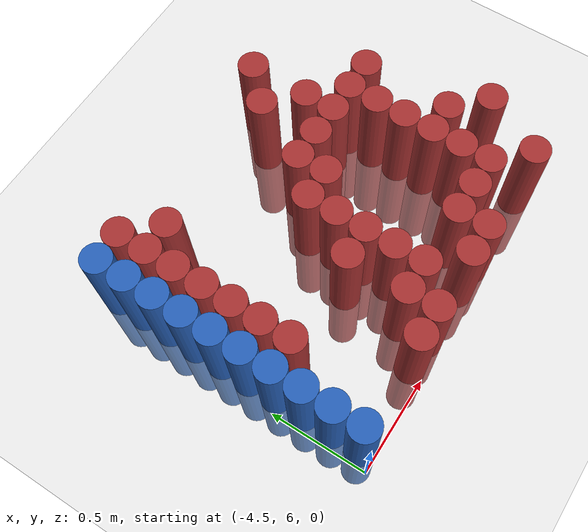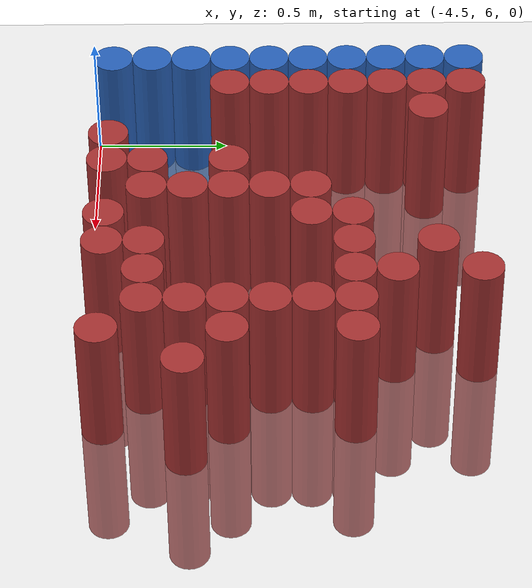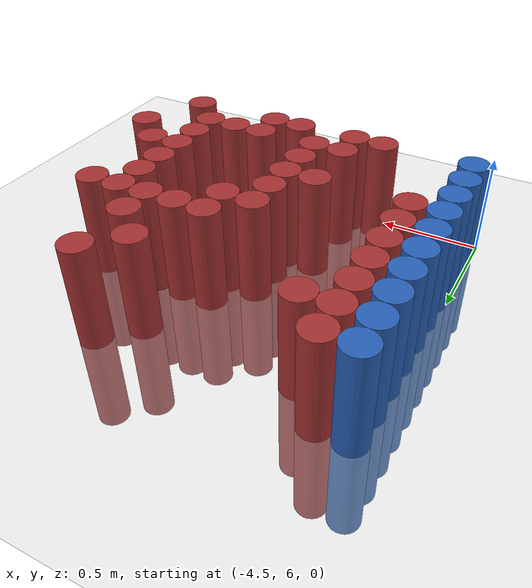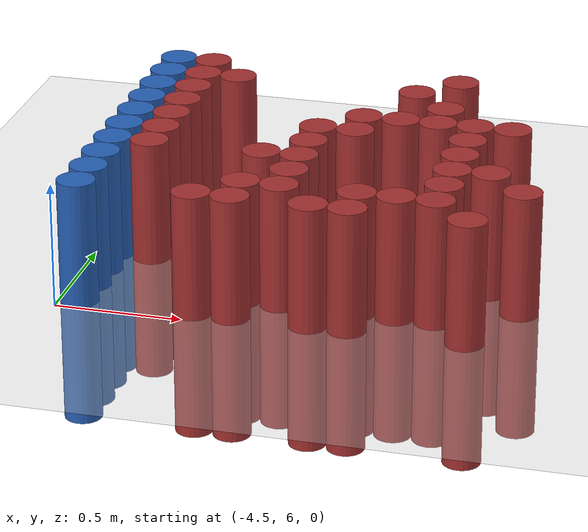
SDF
<sdf version="1.6">
 <world name="default">
  <model name="ground_plane">
   <static>1</static>
   <link name="link">
    <collision name="collision">
     <geometry><plane><normal>0 0 1</normal><size>100 100</size></plane></geometry>
     <surface><friction><ode><mu>100</mu><mu2>50</mu2></ode></friction></surface>
    </collision>
    <visual name="visual">
     <cast_shadows>0</cast_shadows>
     <geometry><plane><normal>0 0 1</normal><size>100 100</size></plane></geometry>
     <material>
      <script><uri>file://media/materials/scripts/gazebo.material</uri><name>Gazebo/Grey</name></script>
     </material>
    </visual>
   </link>
  </model>
  <model name="unit_cylinder_102">
   <static>1</static>
   <pose>-4.425000 6.075000 0.000000 0.000000 0.000000 0.000000</pose>
   <link name="link">
    <inertial>
     <mass>1</mass>
     <inertia><ixx>0.145833</ixx><ixy>0</ixy><ixz>0</ixz><iyy>0.145833</iyy><iyz>0</iyz><izz>0.125</izz></inertia>
    </inertial>
    <collision name="collision">
     <geometry><cylinder><radius>0.075000</radius><length>1</length></cylinder></geometry>
    </collision>
    <visual name="visual">
     <geometry><cylinder><radius>0.075000</radius><length>1</length></cylinder></geometry>
     <material>
      <ambient>0.152000 0.379000 0.720000 1</ambient>
      <diffuse>0.152000 0.379000 0.720000 1</diffuse>
     </material>
     <material>
      <script><name>Gazebo/Grey</name><uri>file://media/materials/scripts/gazebo.material</uri></script>
     </material>
    </visual>
   </link>
  </model>
  <model name="unit_cylinder_103">
   <static>1</static>
   <pose>-4.425000 6.225000 0.000000 0.000000 0.000000 0.000000</pose>
   <link name="link">
    <inertial>
     <mass>1</mass>
     <inertia><ixx>0.145833</ixx><ixy>0</ixy><ixz>0</ixz><iyy>0.145833</iyy><iyz>0</iyz><izz>0.125</izz></inertia>
    </inertial>
    <collision name="collision">
     <geometry><cylinder><radius>0.075000</radius><length>1</length></cylinder></geometry>
    </collision>
    <visual name="visual">
     <geometry><cylinder><radius>0.075000</radius><length>1</length></cylinder></geometry>
     <material>
      <ambient>0.152000 0.379000 0.720000 1</ambient>
      <diffuse>0.152000 0.379000 0.720000 1</diffuse>
     </material>
     <material>
      <script><name>Gazebo/Grey</name><uri>file://media/materials/scripts/gazebo.material</uri></script>
     </material>
    </visual>
   </link>
  </model>
  <model name="unit_cylinder_104">
   <static>1</static>
   <pose>-4.425000 6.375000 0.000000 0.000000 0.000000 0.000000</pose>
   <link name="link">
    <inertial>
     <mass>1</mass>
     <inertia><ixx>0.145833</ixx><ixy>0</ixy><ixz>0</ixz><iyy>0.145833</iyy><iyz>0</iyz><izz>0.125</izz></inertia>
    </inertial>
    <collision name="collision">
     <geometry><cylinder><radius>0.075000</radius><length>1</length></cylinder></geometry>
    </collision>
    <visual name="visual">
     <geometry><cylinder><radius>0.075000</radius><length>1</length></cylinder></geometry>
     <material>
      <ambient>0.152000 0.379000 0.720000 1</ambient>
      <diffuse>0.152000 0.379000 0.720000 1</diffuse>
     </material>
     <material>
      <script><name>Gazebo/Grey</name><uri>file://media/materials/scripts/gazebo.material</uri></script>
     </material>
    </visual>
   </link>
  </model>
  <model name="unit_cylinder_105">
   <static>1</static>
   <pose>-4.425000 6.525000 0.000000 0.000000 0.000000 0.000000</pose>
   <link name="link">
    <inertial>
     <mass>1</mass>
     <inertia><ixx>0.145833</ixx><ixy>0</ixy><ixz>0</ixz><iyy>0.145833</iyy><iyz>0</iyz><izz>0.125</izz></inertia>
    </inertial>
    <collision name="collision">
     <geometry><cylinder><radius>0.075000</radius><length>1</length></cylinder></geometry>
    </collision>
    <visual name="visual">
     <geometry><cylinder><radius>0.075000</radius><length>1</length></cylinder></geometry>
     <material>
      <ambient>0.152000 0.379000 0.720000 1</ambient>
      <diffuse>0.152000 0.379000 0.720000 1</diffuse>
     </material>
     <material>
      <script><name>Gazebo/Grey</name><uri>file://media/materials/scripts/gazebo.material</uri></script>
     </material>
    </visual>
   </link>
  </model>
  <model name="unit_cylinder_106">
   <static>1</static>
   <pose>-4.425000 6.675000 0.000000 0.000000 0.000000 0.000000</pose>
   <link name="link">
    <inertial>
     <mass>1</mass>
     <inertia><ixx>0.145833</ixx><ixy>0</ixy><ixz>0</ixz><iyy>0.145833</iyy><iyz>0</iyz><izz>0.125</izz></inertia>
    </inertial>
    <collision name="collision">
     <geometry><cylinder><radius>0.075000</radius><length>1</length></cylinder></geometry>
    </collision>
    <visual name="visual">
     <geometry><cylinder><radius>0.075000</radius><length>1</length></cylinder></geometry>
     <material>
      <ambient>0.152000 0.379000 0.720000 1</ambient>
      <diffuse>0.152000 0.379000 0.720000 1</diffuse>
     </material>
     <material>
      <script><name>Gazebo/Grey</name><uri>file://media/materials/scripts/gazebo.material</uri></script>
     </material>
    </visual>
   </link>
  </model>
  <model name="unit_cylinder_107">
   <static>1</static>
   <pose>-4.425000 6.825000 0.000000 0.000000 0.000000 0.000000</pose>
   <link name="link">
    <inertial>
     <mass>1</mass>
     <inertia><ixx>0.145833</ixx><ixy>0</ixy><ixz>0</ixz><iyy>0.145833</iyy><iyz>0</iyz><izz>0.125</izz></inertia>
    </inertial>
    <collision name="collision">
     <geometry><cylinder><radius>0.075000</radius><length>1</length></cylinder></geometry>
    </collision>
    <visual name="visual">
     <geometry><cylinder><radius>0.075000</radius><length>1</length></cylinder></geometry>
     <material>
      <ambient>0.152000 0.379000 0.720000 1</ambient>
      <diffuse>0.152000 0.379000 0.720000 1</diffuse>
     </material>
     <material>
      <script><name>Gazebo/Grey</name><uri>file://media/materials/scripts/gazebo.material</uri></script>
     </material>
    </visual>
   </link>
  </model>
  <model name="unit_cylinder_108">
   <static>1</static>
   <pose>-4.425000 6.975000 0.000000 0.000000 0.000000 0.000000</pose>
   <link name="link">
    <inertial>
     <mass>1</mass>
     <inertia><ixx>0.145833</ixx><ixy>0</ixy><ixz>0</ixz><iyy>0.145833</iyy><iyz>0</iyz><izz>0.125</izz></inertia>
    </inertial>
    <collision name="collision">
     <geometry><cylinder><radius>0.075000</radius><length>1</length></cylinder></geometry>
    </collision>
    <visual name="visual">
     <geometry><cylinder><radius>0.075000</radius><length>1</length></cylinder></geometry>
     <material>
      <ambient>0.152000 0.379000 0.720000 1</ambient>
      <diffuse>0.152000 0.379000 0.720000 1</diffuse>
     </material>
     <material>
      <script><name>Gazebo/Grey</name><uri>file://media/materials/scripts/gazebo.material</uri></script>
     </material>
    </visual>
   </link>
  </model>
  <model name="unit_cylinder_109">
   <static>1</static>
   <pose>-4.425000 7.125000 0.000000 0.000000 0.000000 0.000000</pose>
   <link name="link">
    <inertial>
     <mass>1</mass>
     <inertia><ixx>0.145833</ixx><ixy>0</ixy><ixz>0</ixz><iyy>0.145833</iyy><iyz>0</iyz><izz>0.125</izz></inertia>
    </inertial>
    <collision name="collision">
     <geometry><cylinder><radius>0.075000</radius><length>1</length></cylinder></geometry>
    </collision>
    <visual name="visual">
     <geometry><cylinder><radius>0.075000</radius><length>1</length></cylinder></geometry>
     <material>
      <ambient>0.152000 0.379000 0.720000 1</ambient>
      <diffuse>0.152000 0.379000 0.720000 1</diffuse>
     </material>
     <material>
      <script><name>Gazebo/Grey</name><uri>file://media/materials/scripts/gazebo.material</uri></script>
     </material>
    </visual>
   </link>
  </model>
  <model name="unit_cylinder_110">
   <static>1</static>
   <pose>-4.425000 7.275000 0.000000 0.000000 0.000000 0.000000</pose>
   <link name="link">
    <inertial>
     <mass>1</mass>
     <inertia><ixx>0.145833</ixx><ixy>0</ixy><ixz>0</ixz><iyy>0.145833</iyy><iyz>0</iyz><izz>0.125</izz></inertia>
    </inertial>
    <collision name="collision">
     <geometry><cylinder><radius>0.075000</radius><length>1</length></cylinder></geometry>
    </collision>
    <visual name="visual">
     <geometry><cylinder><radius>0.075000</radius><length>1</length></cylinder></geometry>
     <material>
      <ambient>0.152000 0.379000 0.720000 1</ambient>
      <diffuse>0.152000 0.379000 0.720000 1</diffuse>
     </material>
     <material>
      <script><name>Gazebo/Grey</name><uri>file://media/materials/scripts/gazebo.material</uri></script>
     </material>
    </visual>
   </link>
  </model>
  <model name="unit_cylinder_111">
   <static>1</static>
   <pose>-4.425000 7.425000 0.000000 0.000000 0.000000 0.000000</pose>
   <link name="link">
    <inertial>
     <mass>1</mass>
     <inertia><ixx>0.145833</ixx><ixy>0</ixy><ixz>0</ixz><iyy>0.145833</iyy><iyz>0</iyz><izz>0.125</izz></inertia>
    </inertial>
    <collision name="collision">
     <geometry><cylinder><radius>0.075000</radius><length>1</length></cylinder></geometry>
    </collision>
    <visual name="visual">
     <geometry><cylinder><radius>0.075000</radius><length>1</length></cylinder></geometry>
     <material>
      <ambient>0.152000 0.379000 0.720000 1</ambient>
      <diffuse>0.152000 0.379000 0.720000 1</diffuse>
     </material>
     <material>
      <script><name>Gazebo/Grey</name><uri>file://media/materials/scripts/gazebo.material</uri></script>
     </material>
    </visual>
   </link>
  </model>
  <model name="unit_cylinder_128">
   <static>1</static>
   <pose>-4.275000 6.525000 0.000000 0.000000 0.000000 0.000000</pose>
   <link name="link">
    <inertial>
     <mass>1</mass>
     <inertia><ixx>0.145833</ixx><ixy>0</ixy><ixz>0</ixz><iyy>0.145833</iyy><iyz>0</iyz><izz>0.125</izz></inertia>
    </inertial>
    <collision name="collision">
     <geometry><cylinder><radius>0.075000</radius><length>1</length></cylinder></geometry>
    </collision>
    <visual name="visual">
     <geometry><cylinder><radius>0.075000</radius><length>1</length></cylinder></geometry>
     <material>
      <ambient>0.648000 0.192000 0.192000 1</ambient>
      <diffuse>0.648000 0.192000 0.192000 1</diffuse>
     </material>
     <material>
      <script><name>Gazebo/Grey</name><uri>file://media/materials/scripts/gazebo.material</uri></script>
     </material>
    </visual>
   </link>
  </model>
  <model name="unit_cylinder_129">
   <static>1</static>
   <pose>-4.275000 6.675000 0.000000 0.000000 0.000000 0.000000</pose>
   <link name="link">
    <inertial>
     <mass>1</mass>
     <inertia><ixx>0.145833</ixx><ixy>0</ixy><ixz>0</ixz><iyy>0.145833</iyy><iyz>0</iyz><izz>0.125</izz></inertia>
    </inertial>
    <collision name="collision">
     <geometry><cylinder><radius>0.075000</radius><length>1</length></cylinder></geometry>
    </collision>
    <visual name="visual">
     <geometry><cylinder><radius>0.075000</radius><length>1</length></cylinder></geometry>
     <material>
      <ambient>0.648000 0.192000 0.192000 1</ambient>
      <diffuse>0.648000 0.192000 0.192000 1</diffuse>
     </material>
     <material>
      <script><name>Gazebo/Grey</name><uri>file://media/materials/scripts/gazebo.material</uri></script>
     </material>
    </visual>
   </link>
  </model>
  <model name="unit_cylinder_130">
   <static>1</static>
   <pose>-4.275000 6.825000 0.000000 0.000000 0.000000 0.000000</pose>
   <link name="link">
    <inertial>
     <mass>1</mass>
     <inertia><ixx>0.145833</ixx><ixy>0</ixy><ixz>0</ixz><iyy>0.145833</iyy><iyz>0</iyz><izz>0.125</izz></inertia>
    </inertial>
    <collision name="collision">
     <geometry><cylinder><radius>0.075000</radius><length>1</length></cylinder></geometry>
    </collision>
    <visual name="visual">
     <geometry><cylinder><radius>0.075000</radius><length>1</length></cylinder></geometry>
     <material>
      <ambient>0.648000 0.192000 0.192000 1</ambient>
      <diffuse>0.648000 0.192000 0.192000 1</diffuse>
     </material>
     <material>
      <script><name>Gazebo/Grey</name><uri>file://media/materials/scripts/gazebo.material</uri></script>
     </material>
    </visual>
   </link>
  </model>
  <model name="unit_cylinder_131">
   <static>1</static>
   <pose>-4.275000 6.975000 0.000000 0.000000 0.000000 0.000000</pose>
   <link name="link">
    <inertial>
     <mass>1</mass>
     <inertia><ixx>0.145833</ixx><ixy>0</ixy><ixz>0</ixz><iyy>0.145833</iyy><iyz>0</iyz><izz>0.125</izz></inertia>
    </inertial>
    <collision name="collision">
     <geometry><cylinder><radius>0.075000</radius><length>1</length></cylinder></geometry>
    </collision>
    <visual name="visual">
     <geometry><cylinder><radius>0.075000</radius><length>1</length></cylinder></geometry>
     <material>
      <ambient>0.648000 0.192000 0.192000 1</ambient>
      <diffuse>0.648000 0.192000 0.192000 1</diffuse>
     </material>
     <material>
      <script><name>Gazebo/Grey</name><uri>file://media/materials/scripts/gazebo.material</uri></script>
     </material>
    </visual>
   </link>
  </model>
  <model name="unit_cylinder_132">
   <static>1</static>
   <pose>-4.275000 7.125000 0.000000 0.000000 0.000000 0.000000</pose>
   <link name="link">
    <inertial>
     <mass>1</mass>
     <inertia><ixx>0.145833</ixx><ixy>0</ixy><ixz>0</ixz><iyy>0.145833</iyy><iyz>0</iyz><izz>0.125</izz></inertia>
    </inertial>
    <collision name="collision">
     <geometry><cylinder><radius>0.075000</radius><length>1</length></cylinder></geometry>
    </collision>
    <visual name="visual">
     <geometry><cylinder><radius>0.075000</radius><length>1</length></cylinder></geometry>
     <material>
      <ambient>0.648000 0.192000 0.192000 1</ambient>
      <diffuse>0.648000 0.192000 0.192000 1</diffuse>
     </material>
     <material>
      <script><name>Gazebo/Grey</name><uri>file://media/materials/scripts/gazebo.material</uri></script>
     </material>
    </visual>
   </link>
  </model>
  <model name="unit_cylinder_133">
   <static>1</static>
   <pose>-4.275000 7.275000 0.000000 0.000000 0.000000 0.000000</pose>
   <link name="link">
    <inertial>
     <mass>1</mass>
     <inertia><ixx>0.145833</ixx><ixy>0</ixy><ixz>0</ixz><iyy>0.145833</iyy><iyz>0</iyz><izz>0.125</izz></inertia>
    </inertial>
    <collision name="collision">
     <geometry><cylinder><radius>0.075000</radius><length>1</length></cylinder></geometry>
    </collision>
    <visual name="visual">
     <geometry><cylinder><radius>0.075000</radius><length>1</length></cylinder></geometry>
     <material>
      <ambient>0.648000 0.192000 0.192000 1</ambient>
      <diffuse>0.648000 0.192000 0.192000 1</diffuse>
     </material>
     <material>
      <script><name>Gazebo/Grey</name><uri>file://media/materials/scripts/gazebo.material</uri></script>
     </material>
    </visual>
   </link>
  </model>
  <model name="unit_cylinder_134">
   <static>1</static>
   <pose>-4.275000 7.425000 0.000000 0.000000 0.000000 0.000000</pose>
   <link name="link">
    <inertial>
     <mass>1</mass>
     <inertia><ixx>0.145833</ixx><ixy>0</ixy><ixz>0</ixz><iyy>0.145833</iyy><iyz>0</iyz><izz>0.125</izz></inertia>
    </inertial>
    <collision name="collision">
     <geometry><cylinder><radius>0.075000</radius><length>1</length></cylinder></geometry>
    </collision>
    <visual name="visual">
     <geometry><cylinder><radius>0.075000</radius><length>1</length></cylinder></geometry>
     <material>
      <ambient>0.648000 0.192000 0.192000 1</ambient>
      <diffuse>0.648000 0.192000 0.192000 1</diffuse>
     </material>
     <material>
      <script><name>Gazebo/Grey</name><uri>file://media/materials/scripts/gazebo.material</uri></script>
     </material>
    </visual>
   </link>
  </model>
  <model name="unit_cylinder_142">
   <static>1</static>
   <pose>-4.125000 7.275000 0.000000 0.000000 0.000000 0.000000</pose>
   <link name="link">
    <inertial>
     <mass>1</mass>
     <inertia><ixx>0.145833</ixx><ixy>0</ixy><ixz>0</ixz><iyy>0.145833</iyy><iyz>0</iyz><izz>0.125</izz></inertia>
    </inertial>
    <collision name="collision">
     <geometry><cylinder><radius>0.075000</radius><length>1</length></cylinder></geometry>
    </collision>
    <visual name="visual">
     <geometry><cylinder><radius>0.075000</radius><length>1</length></cylinder></geometry>
     <material>
      <ambient>0.648000 0.192000 0.192000 1</ambient>
      <diffuse>0.648000 0.192000 0.192000 1</diffuse>
     </material>
     <material>
      <script><name>Gazebo/Grey</name><uri>file://media/materials/scripts/gazebo.material</uri></script>
     </material>
    </visual>
   </link>
  </model>
  <model name="unit_cylinder_148">
   <static>1</static>
   <pose>-3.975000 6.075000 0.000000 0.000000 0.000000 0.000000</pose>
   <link name="link">
    <inertial>
     <mass>1</mass>
     <inertia><ixx>0.145833</ixx><ixy>0</ixy><ixz>0</ixz><iyy>0.145833</iyy><iyz>0</iyz><izz>0.125</izz></inertia>
    </inertial>
    <collision name="collision">
     <geometry><cylinder><radius>0.075000</radius><length>1</length></cylinder></geometry>
    </collision>
    <visual name="visual">
     <geometry><cylinder><radius>0.075000</radius><length>1</length></cylinder></geometry>
     <material>
      <ambient>0.648000 0.192000 0.192000 1</ambient>
      <diffuse>0.648000 0.192000 0.192000 1</diffuse>
     </material>
     <material>
      <script><name>Gazebo/Grey</name><uri>file://media/materials/scripts/gazebo.material</uri></script>
     </material>
    </visual>
   </link>
  </model>
  <model name="unit_cylinder_158">
   <static>1</static>
   <pose>-3.825000 6.075000 0.000000 0.000000 0.000000 0.000000</pose>
   <link name="link">
    <inertial>
     <mass>1</mass>
     <inertia><ixx>0.145833</ixx><ixy>0</ixy><ixz>0</ixz><iyy>0.145833</iyy><iyz>0</iyz><izz>0.125</izz></inertia>
    </inertial>
    <collision name="collision">
     <geometry><cylinder><radius>0.075000</radius><length>1</length></cylinder></geometry>
    </collision>
    <visual name="visual">
     <geometry><cylinder><radius>0.075000</radius><length>1</length></cylinder></geometry>
     <material>
      <ambient>0.648000 0.192000 0.192000 1</ambient>
      <diffuse>0.648000 0.192000 0.192000 1</diffuse>
     </material>
     <material>
      <script><name>Gazebo/Grey</name><uri>file://media/materials/scripts/gazebo.material</uri></script>
     </material>
    </visual>
   </link>
  </model>
  <model name="unit_cylinder_159">
   <static>1</static>
   <pose>-3.825000 6.225000 0.000000 0.000000 0.000000 0.000000</pose>
   <link name="link">
    <inertial>
     <mass>1</mass>
     <inertia><ixx>0.145833</ixx><ixy>0</ixy><ixz>0</ixz><iyy>0.145833</iyy><iyz>0</iyz><izz>0.125</izz></inertia>
    </inertial>
    <collision name="collision">
     <geometry><cylinder><radius>0.075000</radius><length>1</length></cylinder></geometry>
    </collision>
    <visual name="visual">
     <geometry><cylinder><radius>0.075000</radius><length>1</length></cylinder></geometry>
     <material>
      <ambient>0.648000 0.192000 0.192000 1</ambient>
      <diffuse>0.648000 0.192000 0.192000 1</diffuse>
     </material>
     <material>
      <script><name>Gazebo/Grey</name><uri>file://media/materials/scripts/gazebo.material</uri></script>
     </material>
    </visual>
   </link>
  </model>
  <model name="unit_cylinder_160">
   <static>1</static>
   <pose>-3.825000 6.525000 0.000000 0.000000 0.000000 0.000000</pose>
   <link name="link">
    <inertial>
     <mass>1</mass>
     <inertia><ixx>0.145833</ixx><ixy>0</ixy><ixz>0</ixz><iyy>0.145833</iyy><iyz>0</iyz><izz>0.125</izz></inertia>
    </inertial>
    <collision name="collision">
     <geometry><cylinder><radius>0.075000</radius><length>1</length></cylinder></geometry>
    </collision>
    <visual name="visual">
     <geometry><cylinder><radius>0.075000</radius><length>1</length></cylinder></geometry>
     <material>
      <ambient>0.648000 0.192000 0.192000 1</ambient>
      <diffuse>0.648000 0.192000 0.192000 1</diffuse>
     </material>
     <material>
      <script><name>Gazebo/Grey</name><uri>file://media/materials/scripts/gazebo.material</uri></script>
     </material>
    </visual>
   </link>
  </model>
  <model name="unit_cylinder_168">
   <static>1</static>
   <pose>-3.675000 6.225000 0.000000 0.000000 0.000000 0.000000</pose>
   <link name="link">
    <inertial>
     <mass>1</mass>
     <inertia><ixx>0.145833</ixx><ixy>0</ixy><ixz>0</ixz><iyy>0.145833</iyy><iyz>0</iyz><izz>0.125</izz></inertia>
    </inertial>
    <collision name="collision">
     <geometry><cylinder><radius>0.075000</radius><length>1</length></cylinder></geometry>
    </collision>
    <visual name="visual">
     <geometry><cylinder><radius>0.075000</radius><length>1</length></cylinder></geometry>
     <material>
      <ambient>0.648000 0.192000 0.192000 1</ambient>
      <diffuse>0.648000 0.192000 0.192000 1</diffuse>
     </material>
     <material>
      <script><name>Gazebo/Grey</name><uri>file://media/materials/scripts/gazebo.material</uri></script>
     </material>
    </visual>
   </link>
  </model>
  <model name="unit_cylinder_169">
   <static>1</static>
   <pose>-3.675000 6.375000 0.000000 0.000000 0.000000 0.000000</pose>
   <link name="link">
    <inertial>
     <mass>1</mass>
     <inertia><ixx>0.145833</ixx><ixy>0</ixy><ixz>0</ixz><iyy>0.145833</iyy><iyz>0</iyz><izz>0.125</izz></inertia>
    </inertial>
    <collision name="collision">
     <geometry><cylinder><radius>0.075000</radius><length>1</length></cylinder></geometry>
    </collision>
    <visual name="visual">
     <geometry><cylinder><radius>0.075000</radius><length>1</length></cylinder></geometry>
     <material>
      <ambient>0.648000 0.192000 0.192000 1</ambient>
      <diffuse>0.648000 0.192000 0.192000 1</diffuse>
     </material>
     <material>
      <script><name>Gazebo/Grey</name><uri>file://media/materials/scripts/gazebo.material</uri></script>
     </material>
    </visual>
   </link>
  </model>
  <model name="unit_cylinder_170">
   <static>1</static>
   <pose>-3.675000 6.525000 0.000000 0.000000 0.000000 0.000000</pose>
   <link name="link">
    <inertial>
     <mass>1</mass>
     <inertia><ixx>0.145833</ixx><ixy>0</ixy><ixz>0</ixz><iyy>0.145833</iyy><iyz>0</iyz><izz>0.125</izz></inertia>
    </inertial>
    <collision name="collision">
     <geometry><cylinder><radius>0.075000</radius><length>1</length></cylinder></geometry>
    </collision>
    <visual name="visual">
     <geometry><cylinder><radius>0.075000</radius><length>1</length></cylinder></geometry>
     <material>
      <ambient>0.648000 0.192000 0.192000 1</ambient>
      <diffuse>0.648000 0.192000 0.192000 1</diffuse>
     </material>
     <material>
      <script><name>Gazebo/Grey</name><uri>file://media/materials/scripts/gazebo.material</uri></script>
     </material>
    </visual>
   </link>
  </model>
  <model name="unit_cylinder_171">
   <static>1</static>
   <pose>-3.675000 6.675000 0.000000 0.000000 0.000000 0.000000</pose>
   <link name="link">
    <inertial>
     <mass>1</mass>
     <inertia><ixx>0.145833</ixx><ixy>0</ixy><ixz>0</ixz><iyy>0.145833</iyy><iyz>0</iyz><izz>0.125</izz></inertia>
    </inertial>
    <collision name="collision">
     <geometry><cylinder><radius>0.075000</radius><length>1</length></cylinder></geometry>
    </collision>
    <visual name="visual">
     <geometry><cylinder><radius>0.075000</radius><length>1</length></cylinder></geometry>
     <material>
      <ambient>0.648000 0.192000 0.192000 1</ambient>
      <diffuse>0.648000 0.192000 0.192000 1</diffuse>
     </material>
     <material>
      <script><name>Gazebo/Grey</name><uri>file://media/materials/scripts/gazebo.material</uri></script>
     </material>
    </visual>
   </link>
  </model>
  <model name="unit_cylinder_172">
   <static>1</static>
   <pose>-3.675000 6.825000 0.000000 0.000000 0.000000 0.000000</pose>
   <link name="link">
    <inertial>
     <mass>1</mass>
     <inertia><ixx>0.145833</ixx><ixy>0</ixy><ixz>0</ixz><iyy>0.145833</iyy><iyz>0</iyz><izz>0.125</izz></inertia>
    </inertial>
    <collision name="collision">
     <geometry><cylinder><radius>0.075000</radius><length>1</length></cylinder></geometry>
    </collision>
    <visual name="visual">
     <geometry><cylinder><radius>0.075000</radius><length>1</length></cylinder></geometry>
     <material>
      <ambient>0.648000 0.192000 0.192000 1</ambient>
      <diffuse>0.648000 0.192000 0.192000 1</diffuse>
     </material>
     <material>
      <script><name>Gazebo/Grey</name><uri>file://media/materials/scripts/gazebo.material</uri></script>
     </material>
    </visual>
   </link>
  </model>
  <model name="unit_cylinder_177">
   <static>1</static>
   <pose>-3.525000 6.075000 0.000000 0.000000 0.000000 0.000000</pose>
   <link name="link">
    <inertial>
     <mass>1</mass>
     <inertia><ixx>0.145833</ixx><ixy>0</ixy><ixz>0</ixz><iyy>0.145833</iyy><iyz>0</iyz><izz>0.125</izz></inertia>
    </inertial>
    <collision name="collision">
     <geometry><cylinder><radius>0.075000</radius><length>1</length></cylinder></geometry>
    </collision>
    <visual name="visual">
     <geometry><cylinder><radius>0.075000</radius><length>1</length></cylinder></geometry>
     <material>
      <ambient>0.648000 0.192000 0.192000 1</ambient>
      <diffuse>0.648000 0.192000 0.192000 1</diffuse>
     </material>
     <material>
      <script><name>Gazebo/Grey</name><uri>file://media/materials/scripts/gazebo.material</uri></script>
     </material>
    </visual>
   </link>
  </model>
  <model name="unit_cylinder_178">
   <static>1</static>
   <pose>-3.525000 6.825000 0.000000 0.000000 0.000000 0.000000</pose>
   <link name="link">
    <inertial>
     <mass>1</mass>
     <inertia><ixx>0.145833</ixx><ixy>0</ixy><ixz>0</ixz><iyy>0.145833</iyy><iyz>0</iyz><izz>0.125</izz></inertia>
    </inertial>
    <collision name="collision">
     <geometry><cylinder><radius>0.075000</radius><length>1</length></cylinder></geometry>
    </collision>
    <visual name="visual">
     <geometry><cylinder><radius>0.075000</radius><length>1</length></cylinder></geometry>
     <material>
      <ambient>0.648000 0.192000 0.192000 1</ambient>
      <diffuse>0.648000 0.192000 0.192000 1</diffuse>
     </material>
     <material>
      <script><name>Gazebo/Grey</name><uri>file://media/materials/scripts/gazebo.material</uri></script>
     </material>
    </visual>
   </link>
  </model>
  <model name="unit_cylinder_179">
   <static>1</static>
   <pose>-3.525000 6.975000 0.000000 0.000000 0.000000 0.000000</pose>
   <link name="link">
    <inertial>
     <mass>1</mass>
     <inertia><ixx>0.145833</ixx><ixy>0</ixy><ixz>0</ixz><iyy>0.145833</iyy><iyz>0</iyz><izz>0.125</izz></inertia>
    </inertial>
    <collision name="collision">
     <geometry><cylinder><radius>0.075000</radius><length>1</length></cylinder></geometry>
    </collision>
    <visual name="visual">
     <geometry><cylinder><radius>0.075000</radius><length>1</length></cylinder></geometry>
     <material>
      <ambient>0.648000 0.192000 0.192000 1</ambient>
      <diffuse>0.648000 0.192000 0.192000 1</diffuse>
     </material>
     <material>
      <script><name>Gazebo/Grey</name><uri>file://media/materials/scripts/gazebo.material</uri></script>
     </material>
    </visual>
   </link>
  </model>
  <model name="unit_cylinder_181">
   <static>1</static>
   <pose>-3.375000 6.075000 0.000000 0.000000 0.000000 0.000000</pose>
   <link name="link">
    <inertial>
     <mass>1</mass>
     <inertia><ixx>0.145833</ixx><ixy>0</ixy><ixz>0</ixz><iyy>0.145833</iyy><iyz>0</iyz><izz>0.125</izz></inertia>
    </inertial>
    <collision name="collision">
     <geometry><cylinder><radius>0.075000</radius><length>1</length></cylinder></geometry>
    </collision>
    <visual name="visual">
     <geometry><cylinder><radius>0.075000</radius><length>1</length></cylinder></geometry>
     <material>
      <ambient>0.648000 0.192000 0.192000 1</ambient>
      <diffuse>0.648000 0.192000 0.192000 1</diffuse>
     </material>
     <material>
      <script><name>Gazebo/Grey</name><uri>file://media/materials/scripts/gazebo.material</uri></script>
     </material>
    </visual>
   </link>
  </model>
  <model name="unit_cylinder_182">
   <static>1</static>
   <pose>-3.375000 6.225000 0.000000 0.000000 0.000000 0.000000</pose>
   <link name="link">
    <inertial>
     <mass>1</mass>
     <inertia><ixx>0.145833</ixx><ixy>0</ixy><ixz>0</ixz><iyy>0.145833</iyy><iyz>0</iyz><izz>0.125</izz></inertia>
    </inertial>
    <collision name="collision">
     <geometry><cylinder><radius>0.075000</radius><length>1</length></cylinder></geometry>
    </collision>
    <visual name="visual">
     <geometry><cylinder><radius>0.075000</radius><length>1</length></cylinder></geometry>
     <material>
      <ambient>0.648000 0.192000 0.192000 1</ambient>
      <diffuse>0.648000 0.192000 0.192000 1</diffuse>
     </material>
     <material>
      <script><name>Gazebo/Grey</name><uri>file://media/materials/scripts/gazebo.material</uri></script>
     </material>
    </visual>
   </link>
  </model>
  <model name="unit_cylinder_183">
   <static>1</static>
   <pose>-3.375000 6.975000 0.000000 0.000000 0.000000 0.000000</pose>
   <link name="link">
    <inertial>
     <mass>1</mass>
     <inertia><ixx>0.145833</ixx><ixy>0</ixy><ixz>0</ixz><iyy>0.145833</iyy><iyz>0</iyz><izz>0.125</izz></inertia>
    </inertial>
    <collision name="collision">
     <geometry><cylinder><radius>0.075000</radius><length>1</length></cylinder></geometry>
    </collision>
    <visual name="visual">
     <geometry><cylinder><radius>0.075000</radius><length>1</length></cylinder></geometry>
     <material>
      <ambient>0.648000 0.192000 0.192000 1</ambient>
      <diffuse>0.648000 0.192000 0.192000 1</diffuse>
     </material>
     <material>
      <script><name>Gazebo/Grey</name><uri>file://media/materials/scripts/gazebo.material</uri></script>
     </material>
    </visual>
   </link>
  </model>
  <model name="unit_cylinder_184">
   <static>1</static>
   <pose>-3.375000 7.275000 0.000000 0.000000 0.000000 0.000000</pose>
   <link name="link">
    <inertial>
     <mass>1</mass>
     <inertia><ixx>0.145833</ixx><ixy>0</ixy><ixz>0</ixz><iyy>0.145833</iyy><iyz>0</iyz><izz>0.125</izz></inertia>
    </inertial>
    <collision name="collision">
     <geometry><cylinder><radius>0.075000</radius><length>1</length></cylinder></geometry>
    </collision>
    <visual name="visual">
     <geometry><cylinder><radius>0.075000</radius><length>1</length></cylinder></geometry>
     <material>
      <ambient>0.648000 0.192000 0.192000 1</ambient>
      <diffuse>0.648000 0.192000 0.192000 1</diffuse>
     </material>
     <material>
      <script><name>Gazebo/Grey</name><uri>file://media/materials/scripts/gazebo.material</uri></script>
     </material>
    </visual>
   </link>
  </model>
  <model name="unit_cylinder_186">
   <static>1</static>
   <pose>-3.225000 6.225000 0.000000 0.000000 0.000000 0.000000</pose>
   <link name="link">
    <inertial>
     <mass>1</mass>
     <inertia><ixx>0.145833</ixx><ixy>0</ixy><ixz>0</ixz><iyy>0.145833</iyy><iyz>0</iyz><izz>0.125</izz></inertia>
    </inertial>
    <collision name="collision">
     <geometry><cylinder><radius>0.075000</radius><length>1</length></cylinder></geometry>
    </collision>
    <visual name="visual">
     <geometry><cylinder><radius>0.075000</radius><length>1</length></cylinder></geometry>
     <material>
      <ambient>0.648000 0.192000 0.192000 1</ambient>
      <diffuse>0.648000 0.192000 0.192000 1</diffuse>
     </material>
     <material>
      <script><name>Gazebo/Grey</name><uri>file://media/materials/scripts/gazebo.material</uri></script>
     </material>
    </visual>
   </link>
  </model>
  <model name="unit_cylinder_187">
   <static>1</static>
   <pose>-3.225000 6.975000 0.000000 0.000000 0.000000 0.000000</pose>
   <link name="link">
    <inertial>
     <mass>1</mass>
     <inertia><ixx>0.145833</ixx><ixy>0</ixy><ixz>0</ixz><iyy>0.145833</iyy><iyz>0</iyz><izz>0.125</izz></inertia>
    </inertial>
    <collision name="collision">
     <geometry><cylinder><radius>0.075000</radius><length>1</length></cylinder></geometry>
    </collision>
    <visual name="visual">
     <geometry><cylinder><radius>0.075000</radius><length>1</length></cylinder></geometry>
     <material>
      <ambient>0.648000 0.192000 0.192000 1</ambient>
      <diffuse>0.648000 0.192000 0.192000 1</diffuse>
     </material>
     <material>
      <script><name>Gazebo/Grey</name><uri>file://media/materials/scripts/gazebo.material</uri></script>
     </material>
    </visual>
   </link>
  </model>
  <model name="unit_cylinder_188">
   <static>1</static>
   <pose>-3.225000 7.125000 0.000000 0.000000 0.000000 0.000000</pose>
   <link name="link">
    <inertial>
     <mass>1</mass>
     <inertia><ixx>0.145833</ixx><ixy>0</ixy><ixz>0</ixz><iyy>0.145833</iyy><iyz>0</iyz><izz>0.125</izz></inertia>
    </inertial>
    <collision name="collision">
     <geometry><cylinder><radius>0.075000</radius><length>1</length></cylinder></geometry>
    </collision>
    <visual name="visual">
     <geometry><cylinder><radius>0.075000</radius><length>1</length></cylinder></geometry>
     <material>
      <ambient>0.648000 0.192000 0.192000 1</ambient>
      <diffuse>0.648000 0.192000 0.192000 1</diffuse>
     </material>
     <material>
      <script><name>Gazebo/Grey</name><uri>file://media/materials/scripts/gazebo.material</uri></script>
     </material>
    </visual>
   </link>
  </model>
  <model name="unit_cylinder_189">
   <static>1</static>
   <pose>-3.225000 7.425000 0.000000 0.000000 0.000000 0.000000</pose>
   <link name="link">
    <inertial>
     <mass>1</mass>
     <inertia><ixx>0.145833</ixx><ixy>0</ixy><ixz>0</ixz><iyy>0.145833</iyy><iyz>0</iyz><izz>0.125</izz></inertia>
    </inertial>
    <collision name="collision">
     <geometry><cylinder><radius>0.075000</radius><length>1</length></cylinder></geometry>
    </collision>
    <visual name="visual">
     <geometry><cylinder><radius>0.075000</radius><length>1</length></cylinder></geometry>
     <material>
      <ambient>0.648000 0.192000 0.192000 1</ambient>
      <diffuse>0.648000 0.192000 0.192000 1</diffuse>
     </material>
     <material>
      <script><name>Gazebo/Grey</name><uri>file://media/materials/scripts/gazebo.material</uri></script>
     </material>
    </visual>
   </link>
  </model>
  <model name="unit_cylinder_193">
   <static>1</static>
   <pose>-3.075000 6.225000 0.000000 0.000000 0.000000 0.000000</pose>
   <link name="link">
    <inertial>
     <mass>1</mass>
     <inertia><ixx>0.145833</ixx><ixy>0</ixy><ixz>0</ixz><iyy>0.145833</iyy><iyz>0</iyz><izz>0.125</izz></inertia>
    </inertial>
    <collision name="collision">
     <geometry><cylinder><radius>0.075000</radius><length>1</length></cylinder></geometry>
    </collision>
    <visual name="visual">
     <geometry><cylinder><radius>0.075000</radius><length>1</length></cylinder></geometry>
     <material>
      <ambient>0.648000 0.192000 0.192000 1</ambient>
      <diffuse>0.648000 0.192000 0.192000 1</diffuse>
     </material>
     <material>
      <script><name>Gazebo/Grey</name><uri>file://media/materials/scripts/gazebo.material</uri></script>
     </material>
    </visual>
   </link>
  </model>
  <model name="unit_cylinder_194">
   <static>1</static>
   <pose>-3.075000 6.375000 0.000000 0.000000 0.000000 0.000000</pose>
   <link name="link">
    <inertial>
     <mass>1</mass>
     <inertia><ixx>0.145833</ixx><ixy>0</ixy><ixz>0</ixz><iyy>0.145833</iyy><iyz>0</iyz><izz>0.125</izz></inertia>
    </inertial>
    <collision name="collision">
     <geometry><cylinder><radius>0.075000</radius><length>1</length></cylinder></geometry>
    </collision>
    <visual name="visual">
     <geometry><cylinder><radius>0.075000</radius><length>1</length></cylinder></geometry>
     <material>
      <ambient>0.648000 0.192000 0.192000 1</ambient>
      <diffuse>0.648000 0.192000 0.192000 1</diffuse>
     </material>
     <material>
      <script><name>Gazebo/Grey</name><uri>file://media/materials/scripts/gazebo.material</uri></script>
     </material>
    </visual>
   </link>
  </model>
  <model name="unit_cylinder_195">
   <static>1</static>
   <pose>-3.075000 6.525000 0.000000 0.000000 0.000000 0.000000</pose>
   <link name="link">
    <inertial>
     <mass>1</mass>
     <inertia><ixx>0.145833</ixx><ixy>0</ixy><ixz>0</ixz><iyy>0.145833</iyy><iyz>0</iyz><izz>0.125</izz></inertia>
    </inertial>
    <collision name="collision">
     <geometry><cylinder><radius>0.075000</radius><length>1</length></cylinder></geometry>
    </collision>
    <visual name="visual">
     <geometry><cylinder><radius>0.075000</radius><length>1</length></cylinder></geometry>
     <material>
      <ambient>0.648000 0.192000 0.192000 1</ambient>
      <diffuse>0.648000 0.192000 0.192000 1</diffuse>
     </material>
     <material>
      <script><name>Gazebo/Grey</name><uri>file://media/materials/scripts/gazebo.material</uri></script>
     </material>
    </visual>
   </link>
  </model>
  <model name="unit_cylinder_196">
   <static>1</static>
   <pose>-3.075000 6.675000 0.000000 0.000000 0.000000 0.000000</pose>
   <link name="link">
    <inertial>
     <mass>1</mass>
     <inertia><ixx>0.145833</ixx><ixy>0</ixy><ixz>0</ixz><iyy>0.145833</iyy><iyz>0</iyz><izz>0.125</izz></inertia>
    </inertial>
    <collision name="collision">
     <geometry><cylinder><radius>0.075000</radius><length>1</length></cylinder></geometry>
    </collision>
    <visual name="visual">
     <geometry><cylinder><radius>0.075000</radius><length>1</length></cylinder></geometry>
     <material>
      <ambient>0.648000 0.192000 0.192000 1</ambient>
      <diffuse>0.648000 0.192000 0.192000 1</diffuse>
     </material>
     <material>
      <script><name>Gazebo/Grey</name><uri>file://media/materials/scripts/gazebo.material</uri></script>
     </material>
    </visual>
   </link>
  </model>
  <model name="unit_cylinder_197">
   <static>1</static>
   <pose>-3.075000 6.825000 0.000000 0.000000 0.000000 0.000000</pose>
   <link name="link">
    <inertial>
     <mass>1</mass>
     <inertia><ixx>0.145833</ixx><ixy>0</ixy><ixz>0</ixz><iyy>0.145833</iyy><iyz>0</iyz><izz>0.125</izz></inertia>
    </inertial>
    <collision name="collision">
     <geometry><cylinder><radius>0.075000</radius><length>1</length></cylinder></geometry>
    </collision>
    <visual name="visual">
     <geometry><cylinder><radius>0.075000</radius><length>1</length></cylinder></geometry>
     <material>
      <ambient>0.648000 0.192000 0.192000 1</ambient>
      <diffuse>0.648000 0.192000 0.192000 1</diffuse>
     </material>
     <material>
      <script><name>Gazebo/Grey</name><uri>file://media/materials/scripts/gazebo.material</uri></script>
     </material>
    </visual>
   </link>
  </model>
  <model name="unit_cylinder_198">
   <static>1</static>
   <pose>-3.075000 6.975000 0.000000 0.000000 0.000000 0.000000</pose>
   <link name="link">
    <inertial>
     <mass>1</mass>
     <inertia><ixx>0.145833</ixx><ixy>0</ixy><ixz>0</ixz><iyy>0.145833</iyy><iyz>0</iyz><izz>0.125</izz></inertia>
    </inertial>
    <collision name="collision">
     <geometry><cylinder><radius>0.075000</radius><length>1</length></cylinder></geometry>
    </collision>
    <visual name="visual">
     <geometry><cylinder><radius>0.075000</radius><length>1</length></cylinder></geometry>
     <material>
      <ambient>0.648000 0.192000 0.192000 1</ambient>
      <diffuse>0.648000 0.192000 0.192000 1</diffuse>
     </material>
     <material>
      <script><name>Gazebo/Grey</name><uri>file://media/materials/scripts/gazebo.material</uri></script>
     </material>
    </visual>
   </link>
  </model>
  <model name="unit_cylinder_202">
   <static>1</static>
   <pose>-2.925000 6.075000 0.000000 0.000000 0.000000 0.000000</pose>
   <link name="link">
    <inertial>
     <mass>1</mass>
     <inertia><ixx>0.145833</ixx><ixy>0</ixy><ixz>0</ixz><iyy>0.145833</iyy><iyz>0</iyz><izz>0.125</izz></inertia>
    </inertial>
    <collision name="collision">
     <geometry><cylinder><radius>0.075000</radius><length>1</length></cylinder></geometry>
    </collision>
    <visual name="visual">
     <geometry><cylinder><radius>0.075000</radius><length>1</length></cylinder></geometry>
     <material>
      <ambient>0.648000 0.192000 0.192000 1</ambient>
      <diffuse>0.648000 0.192000 0.192000 1</diffuse>
     </material>
     <material>
      <script><name>Gazebo/Grey</name><uri>file://media/materials/scripts/gazebo.material</uri></script>
     </material>
    </visual>
   </link>
  </model>
  <model name="unit_cylinder_203">
   <static>1</static>
   <pose>-2.925000 6.525000 0.000000 0.000000 0.000000 0.000000</pose>
   <link name="link">
    <inertial>
     <mass>1</mass>
     <inertia><ixx>0.145833</ixx><ixy>0</ixy><ixz>0</ixz><iyy>0.145833</iyy><iyz>0</iyz><izz>0.125</izz></inertia>
    </inertial>
    <collision name="collision">
     <geometry><cylinder><radius>0.075000</radius><length>1</length></cylinder></geometry>
    </collision>
    <visual name="visual">
     <geometry><cylinder><radius>0.075000</radius><length>1</length></cylinder></geometry>
     <material>
      <ambient>0.648000 0.192000 0.192000 1</ambient>
      <diffuse>0.648000 0.192000 0.192000 1</diffuse>
     </material>
     <material>
      <script><name>Gazebo/Grey</name><uri>file://media/materials/scripts/gazebo.material</uri></script>
     </material>
    </visual>
   </link>
  </model>
  <model name="unit_cylinder_204">
   <static>1</static>
   <pose>-2.925000 6.975000 0.000000 0.000000 0.000000 0.000000</pose>
   <link name="link">
    <inertial>
     <mass>1</mass>
     <inertia><ixx>0.145833</ixx><ixy>0</ixy><ixz>0</ixz><iyy>0.145833</iyy><iyz>0</iyz><izz>0.125</izz></inertia>
    </inertial>
    <collision name="collision">
     <geometry><cylinder><radius>0.075000</radius><length>1</length></cylinder></geometry>
    </collision>
    <visual name="visual">
     <geometry><cylinder><radius>0.075000</radius><length>1</length></cylinder></geometry>
     <material>
      <ambient>0.648000 0.192000 0.192000 1</ambient>
      <diffuse>0.648000 0.192000 0.192000 1</diffuse>
     </material>
     <material>
      <script><name>Gazebo/Grey</name><uri>file://media/materials/scripts/gazebo.material</uri></script>
     </material>
    </visual>
   </link>
  </model>
  <model name="unit_cylinder_208">
   <static>1</static>
   <pose>-2.775000 6.375000 0.000000 0.000000 0.000000 0.000000</pose>
   <link name="link">
    <inertial>
     <mass>1</mass>
     <inertia><ixx>0.145833</ixx><ixy>0</ixy><ixz>0</ixz><iyy>0.145833</iyy><iyz>0</iyz><izz>0.125</izz></inertia>
    </inertial>
    <collision name="collision">
     <geometry><cylinder><radius>0.075000</radius><length>1</length></cylinder></geometry>
    </collision>
    <visual name="visual">
     <geometry><cylinder><radius>0.075000</radius><length>1</length></cylinder></geometry>
     <material>
      <ambient>0.648000 0.192000 0.192000 1</ambient>
      <diffuse>0.648000 0.192000 0.192000 1</diffuse>
     </material>
     <material>
      <script><name>Gazebo/Grey</name><uri>file://media/materials/scripts/gazebo.material</uri></script>
     </material>
    </visual>
   </link>
  </model>
 </world>
</sdf>
